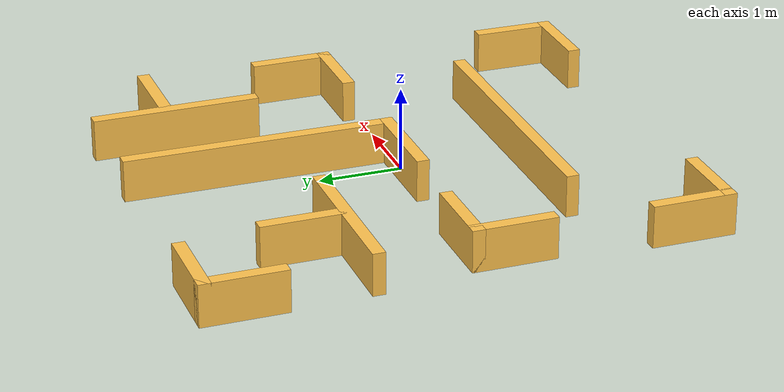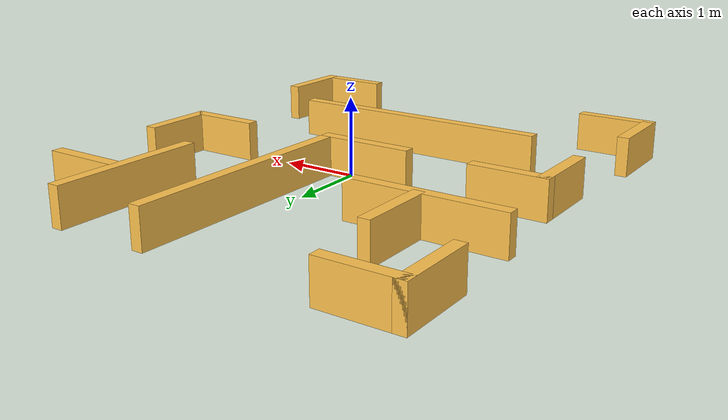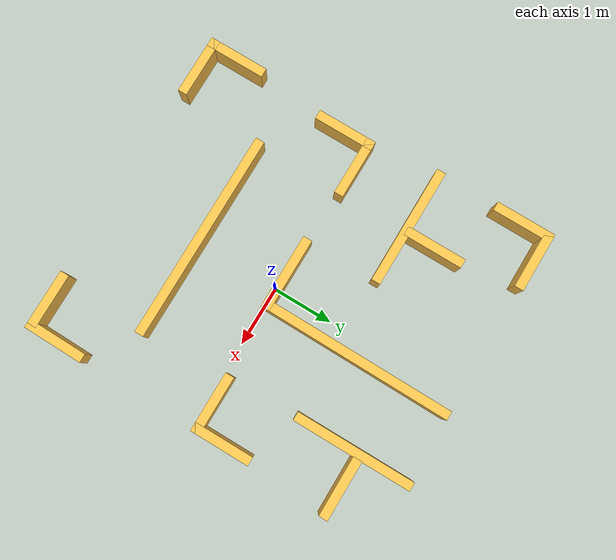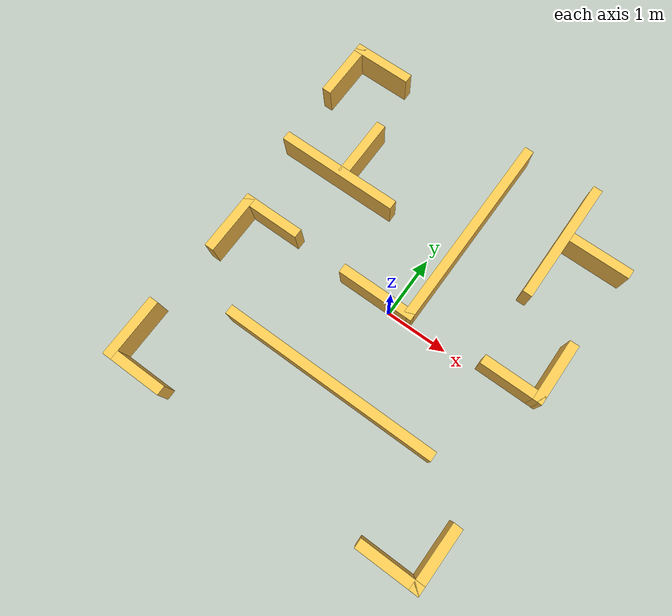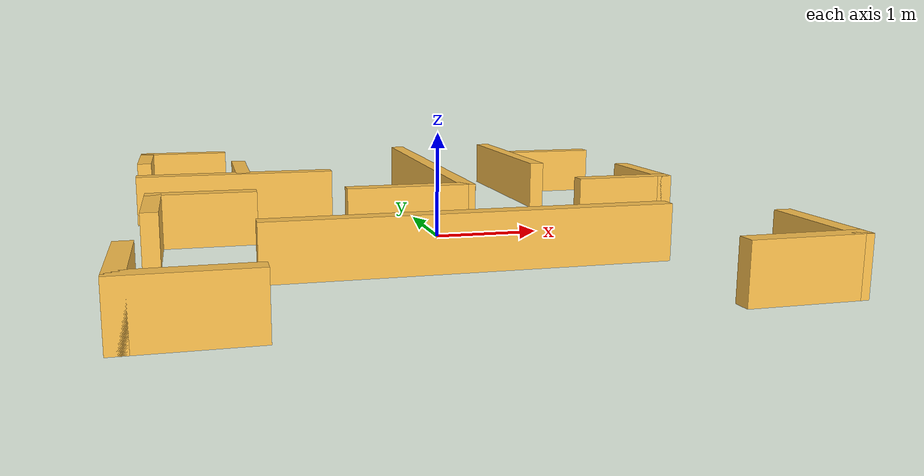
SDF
<?xml version='1.0'?>
<sdf version='1.6'>
  <model name='map1'>
    <pose frame=''>-0.155 0.186877 0 0 -0 0</pose>
    <link name='Wall_10'>
      <collision name='Wall_10_Collision'>
        <geometry>
          <box>
            <size>2 0.15 0.5</size>
          </box>
        </geometry>
        <pose frame=''>0 0 0.25 0 -0 0</pose>
      </collision>
      <visual name='Wall_10_Visual'>
        <pose frame=''>0 0 0.25 0 -0 0</pose>
        <geometry>
          <box>
            <size>2 0.15 0.5</size>
          </box>
        </geometry>
        <material>
          <script>
            <uri>file://media/materials/scripts/gazebo.material</uri>
            <name>Gazebo/Grey</name>
          </script>
          <ambient>1 0.764706 0.305882 1</ambient>
        </material>
        <meta>
          <layer>0</layer>
        </meta>
      </visual>
      <pose frame=''>-1.685 1.09112 0 0 -0 0</pose>
    </link>
    <link name='Wall_14'>
      <collision name='Wall_14_Collision'>
        <geometry>
          <box>
            <size>1 0.15 0.5</size>
          </box>
        </geometry>
        <pose frame=''>0 0 0.25 0 -0 0</pose>
      </collision>
      <visual name='Wall_14_Visual'>
        <pose frame=''>0 0 0.25 0 -0 0</pose>
        <geometry>
          <box>
            <size>1 0.15 0.5</size>
          </box>
        </geometry>
        <material>
          <script>
            <uri>file://media/materials/scripts/gazebo.material</uri>
            <name>Gazebo/Grey</name>
          </script>
          <ambient>1 0.764706 0.305882 1</ambient>
        </material>
        <meta>
          <layer>0</layer>
        </meta>
      </visual>
      <pose frame=''>-1.608 1.58712 0 0 -0 -1.5708</pose>
    </link>
    <link name='Wall_16'>
      <collision name='Wall_16_Collision'>
        <geometry>
          <box>
            <size>1 0.15 0.5</size>
          </box>
        </geometry>
        <pose frame=''>0 0 0.25 0 -0 0</pose>
      </collision>
      <visual name='Wall_16_Visual'>
        <pose frame=''>0 0 0.25 0 -0 0</pose>
        <geometry>
          <box>
            <size>1 0.15 0.5</size>
          </box>
        </geometry>
        <material>
          <script>
            <uri>file://media/materials/scripts/gazebo.material</uri>
            <name>Gazebo/Grey</name>
          </script>
          <ambient>1 0.764706 0.305882 1</ambient>
        </material>
        <meta>
          <layer>0</layer>
        </meta>
      </visual>
      <pose frame=''>-2.645 2.56912 0 0 -0 1.5708</pose>
    </link>
    <link name='Wall_17'>
      <collision name='Wall_17_Collision'>
        <geometry>
          <box>
            <size>1 0.15 0.5</size>
          </box>
        </geometry>
        <pose frame=''>0 0 0.25 0 -0 0</pose>
      </collision>
      <visual name='Wall_17_Visual'>
        <pose frame=''>0 0 0.25 0 -0 0</pose>
        <geometry>
          <box>
            <size>1 0.15 0.5</size>
          </box>
        </geometry>
        <material>
          <script>
            <uri>file://media/materials/scripts/gazebo.material</uri>
            <name>Gazebo/Grey</name>
          </script>
          <ambient>1 0.764706 0.305882 1</ambient>
        </material>
        <meta>
          <layer>0</layer>
        </meta>
      </visual>
      <pose frame=''>-2.22 2.99412 0 0 -0 0</pose>
    </link>
    <link name='Wall_20'>
      <collision name='Wall_20_Collision'>
        <geometry>
          <box>
            <size>1.25017 0.15 0.5</size>
          </box>
        </geometry>
        <pose frame=''>0 0 0.25 0 -0 0</pose>
      </collision>
      <visual name='Wall_20_Visual'>
        <pose frame=''>0 0 0.25 0 -0 0</pose>
        <geometry>
          <box>
            <size>1.25017 0.15 0.5</size>
          </box>
        </geometry>
        <material>
          <script>
            <uri>file://media/materials/scripts/gazebo.material</uri>
            <name>Gazebo/Grey</name>
          </script>
          <ambient>1 0.764706 0.305882 1</ambient>
        </material>
        <meta>
          <layer>0</layer>
        </meta>
      </visual>
      <pose frame=''>-0.098 -0.132877 0 0 -0 0</pose>
    </link>
    <link name='Wall_21'>
      <collision name='Wall_21_Collision'>
        <geometry>
          <box>
            <size>3.25 0.15 0.5</size>
          </box>
        </geometry>
        <pose frame=''>0 0 0.25 0 -0 0</pose>
      </collision>
      <visual name='Wall_21_Visual'>
        <pose frame=''>0 0 0.25 0 -0 0</pose>
        <geometry>
          <box>
            <size>3.25 0.15 0.5</size>
          </box>
        </geometry>
        <material>
          <script>
            <uri>file://media/materials/scripts/gazebo.material</uri>
            <name>Gazebo/Grey</name>
          </script>
          <ambient>1 0.764706 0.305882 1</ambient>
        </material>
        <meta>
          <layer>0</layer>
        </meta>
      </visual>
      <pose frame=''>0.465 1.41712 0 0 -0 1.56241</pose>
    </link>
    <link name='Wall_23'>
      <collision name='Wall_23_Collision'>
        <geometry>
          <box>
            <size>1 0.15 0.5</size>
          </box>
        </geometry>
        <pose frame=''>0 0 0.25 0 -0 0</pose>
      </collision>
      <visual name='Wall_23_Visual'>
        <pose frame=''>0 0 0.25 0 -0 0</pose>
        <geometry>
          <box>
            <size>1 0.15 0.5</size>
          </box>
        </geometry>
        <material>
          <script>
            <uri>file://media/materials/scripts/gazebo.material</uri>
            <name>Gazebo/Grey</name>
          </script>
          <ambient>1 0.764706 0.305882 1</ambient>
        </material>
        <meta>
          <layer>0</layer>
        </meta>
      </visual>
      <pose frame=''>-2.056 -0.083877 0 0 -0 3.14159</pose>
    </link>
    <link name='Wall_24'>
      <collision name='Wall_24_Collision'>
        <geometry>
          <box>
            <size>1 0.15 0.5</size>
          </box>
        </geometry>
        <pose frame=''>0 0 0.25 0 -0 0</pose>
      </collision>
      <visual name='Wall_24_Visual'>
        <pose frame=''>0 0 0.25 0 -0 0</pose>
        <geometry>
          <box>
            <size>1 0.15 0.5</size>
          </box>
        </geometry>
        <material>
          <script>
            <uri>file://media/materials/scripts/gazebo.material</uri>
            <name>Gazebo/Grey</name>
          </script>
          <ambient>1 0.764706 0.305882 1</ambient>
        </material>
        <meta>
          <layer>0</layer>
        </meta>
      </visual>
      <pose frame=''>-2.481 -0.508877 0 0 -0 -1.5708</pose>
    </link>
    <link name='Wall_26'>
      <collision name='Wall_26_Collision'>
        <geometry>
          <box>
            <size>3.5 0.15 0.5</size>
          </box>
        </geometry>
        <pose frame=''>0 0 0.25 0 -0 0</pose>
      </collision>
      <visual name='Wall_26_Visual'>
        <pose frame=''>0 0 0.25 0 -0 0</pose>
        <geometry>
          <box>
            <size>3.5 0.15 0.5</size>
          </box>
        </geometry>
        <material>
          <script>
            <uri>file://media/materials/scripts/gazebo.material</uri>
            <name>Gazebo/Grey</name>
          </script>
          <ambient>1 0.764706 0.305882 1</ambient>
        </material>
        <meta>
          <layer>0</layer>
        </meta>
      </visual>
      <pose frame=''>0.086 -1.55688 0 0 -0 0</pose>
    </link>
    <link name='Wall_29'>
      <collision name='Wall_29_Collision'>
        <geometry>
          <box>
            <size>1 0.15 0.5</size>
          </box>
        </geometry>
        <pose frame=''>0 0 0.25 0 -0 0</pose>
      </collision>
      <visual name='Wall_29_Visual'>
        <pose frame=''>0 0 0.25 0 -0 0</pose>
        <geometry>
          <box>
            <size>1 0.15 0.5</size>
          </box>
        </geometry>
        <material>
          <script>
            <uri>file://media/materials/scripts/gazebo.material</uri>
            <name>Gazebo/Grey</name>
          </script>
          <ambient>1 0.764706 0.305882 1</ambient>
        </material>
        <meta>
          <layer>0</layer>
        </meta>
      </visual>
      <pose frame=''>2.148 -0.064877 0 0 -0 0</pose>
    </link>
    <link name='Wall_31'>
      <collision name='Wall_31_Collision'>
        <geometry>
          <box>
            <size>1 0.15 0.5</size>
          </box>
        </geometry>
        <pose frame=''>0 0 0.25 0 -0 0</pose>
      </collision>
      <visual name='Wall_31_Visual'>
        <pose frame=''>0 0 0.25 0 -0 0</pose>
        <geometry>
          <box>
            <size>1 0.15 0.5</size>
          </box>
        </geometry>
        <material>
          <script>
            <uri>file://media/materials/scripts/gazebo.material</uri>
            <name>Gazebo/Grey</name>
          </script>
          <ambient>1 0.764706 0.305882 1</ambient>
        </material>
        <meta>
          <layer>0</layer>
        </meta>
      </visual>
      <pose frame=''>2.573 0.360123 0 0 -0 1.5708</pose>
    </link>
    <link name='Wall_33'>
      <collision name='Wall_33_Collision'>
        <geometry>
          <box>
            <size>2 0.15 0.5</size>
          </box>
        </geometry>
        <pose frame=''>0 0 0.25 0 -0 0</pose>
      </collision>
      <visual name='Wall_33_Visual'>
        <pose frame=''>0 0 0.25 0 -0 0</pose>
        <geometry>
          <box>
            <size>2 0.15 0.5</size>
          </box>
        </geometry>
        <material>
          <script>
            <uri>file://media/materials/scripts/gazebo.material</uri>
            <name>Gazebo/Grey</name>
          </script>
          <ambient>1 0.764706 0.305882 1</ambient>
        </material>
        <meta>
          <layer>0</layer>
        </meta>
      </visual>
      <pose frame=''>1.656 2.08612 0 0 -0 -1.5708</pose>
    </link>
    <link name='Wall_35'>
      <collision name='Wall_35_Collision'>
        <geometry>
          <box>
            <size>1 0.15 0.5</size>
          </box>
        </geometry>
        <pose frame=''>0 0 0.25 0 -0 0</pose>
      </collision>
      <visual name='Wall_35_Visual'>
        <pose frame=''>0 0 0.25 0 -0 0</pose>
        <geometry>
          <box>
            <size>1 0.15 0.5</size>
          </box>
        </geometry>
        <material>
          <script>
            <uri>file://media/materials/scripts/gazebo.material</uri>
            <name>Gazebo/Grey</name>
          </script>
          <ambient>1 0.764706 0.305882 1</ambient>
        </material>
        <meta>
          <layer>0</layer>
        </meta>
      </visual>
      <pose frame=''>2.22 2.19612 0 0 -0 0</pose>
    </link>
    <link name='Wall_37'>
      <collision name='Wall_37_Collision'>
        <geometry>
          <box>
            <size>1 0.15 0.5</size>
          </box>
        </geometry>
        <pose frame=''>0 0 0.25 0 -0 0</pose>
      </collision>
      <visual name='Wall_37_Visual'>
        <pose frame=''>0 0 0.25 0 -0 0</pose>
        <geometry>
          <box>
            <size>1 0.15 0.5</size>
          </box>
        </geometry>
        <material>
          <script>
            <uri>file://media/materials/scripts/gazebo.material</uri>
            <name>Gazebo/Grey</name>
          </script>
          <ambient>1 0.764706 0.305882 1</ambient>
        </material>
        <meta>
          <layer>0</layer>
        </meta>
      </visual>
      <pose frame=''>-2.615 -2.56888 0 0 -0 -1.5708</pose>
    </link>
    <link name='Wall_38'>
      <collision name='Wall_38_Collision'>
        <geometry>
          <box>
            <size>1 0.15 0.5</size>
          </box>
        </geometry>
        <pose frame=''>0 0 0.25 0 -0 0</pose>
      </collision>
      <visual name='Wall_38_Visual'>
        <pose frame=''>0 0 0.25 0 -0 0</pose>
        <geometry>
          <box>
            <size>1 0.15 0.5</size>
          </box>
        </geometry>
        <material>
          <script>
            <uri>file://media/materials/scripts/gazebo.material</uri>
            <name>Gazebo/Grey</name>
          </script>
          <ambient>1 0.764706 0.305882 1</ambient>
        </material>
        <meta>
          <layer>0</layer>
        </meta>
      </visual>
      <pose frame=''>-2.19 -2.99388 0 0 -0 0</pose>
    </link>
    <link name='Wall_40'>
      <collision name='Wall_40_Collision'>
        <geometry>
          <box>
            <size>0.999592 0.15 0.5</size>
          </box>
        </geometry>
        <pose frame=''>0 0 0.25 0 -0 0</pose>
      </collision>
      <visual name='Wall_40_Visual'>
        <pose frame=''>0 0 0.25 0 -0 0</pose>
        <geometry>
          <box>
            <size>0.999592 0.15 0.5</size>
          </box>
        </geometry>
        <material>
          <script>
            <uri>file://media/materials/scripts/gazebo.material</uri>
            <name>Gazebo/Grey</name>
          </script>
          <ambient>1 0.764706 0.305882 1</ambient>
        </material>
        <meta>
          <layer>0</layer>
        </meta>
      </visual>
      <pose frame=''>2.137 -3.00988 0 0 -0 0</pose>
    </link>
    <link name='Wall_41'>
      <collision name='Wall_41_Collision'>
        <geometry>
          <box>
            <size>1 0.15 0.5</size>
          </box>
        </geometry>
        <pose frame=''>0 0 0.25 0 -0 0</pose>
      </collision>
      <visual name='Wall_41_Visual'>
        <pose frame=''>0 0 0.25 0 -0 0</pose>
        <geometry>
          <box>
            <size>1 0.15 0.5</size>
          </box>
        </geometry>
        <material>
          <script>
            <uri>file://media/materials/scripts/gazebo.material</uri>
            <name>Gazebo/Grey</name>
          </script>
          <ambient>1 0.764706 0.305882 1</ambient>
        </material>
        <meta>
          <layer>0</layer>
        </meta>
      </visual>
      <pose frame=''>2.5695 -2.58488 0 0 -0 1.55315</pose>
    </link>
    <static>1</static>
  </model>
</sdf>
